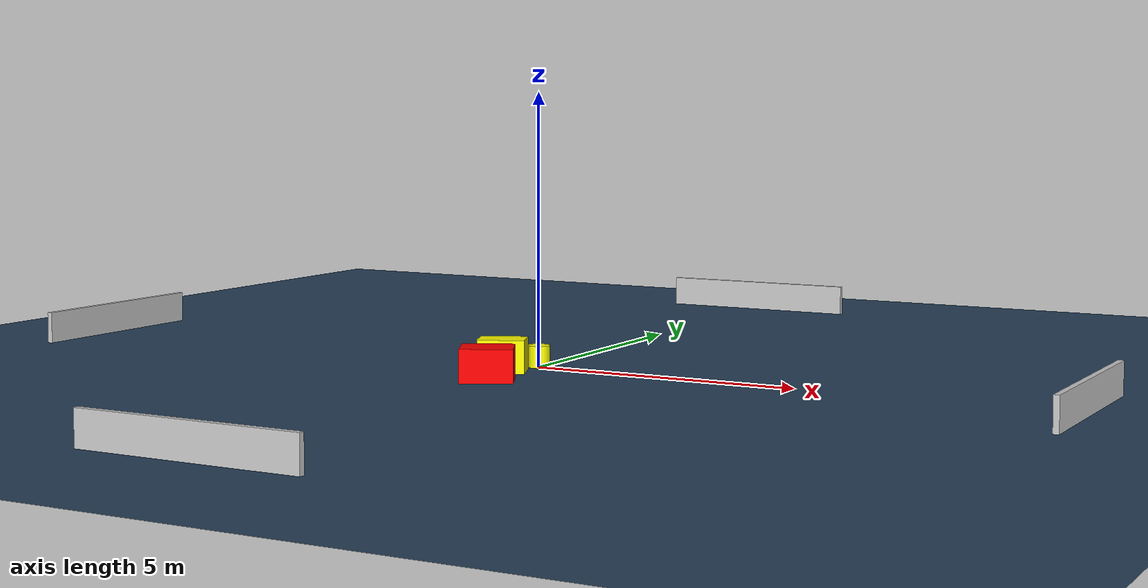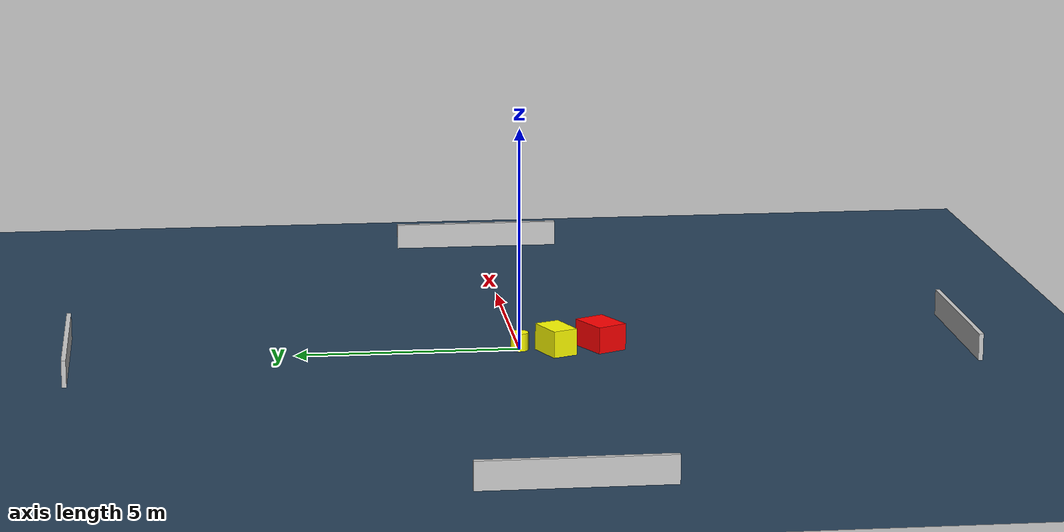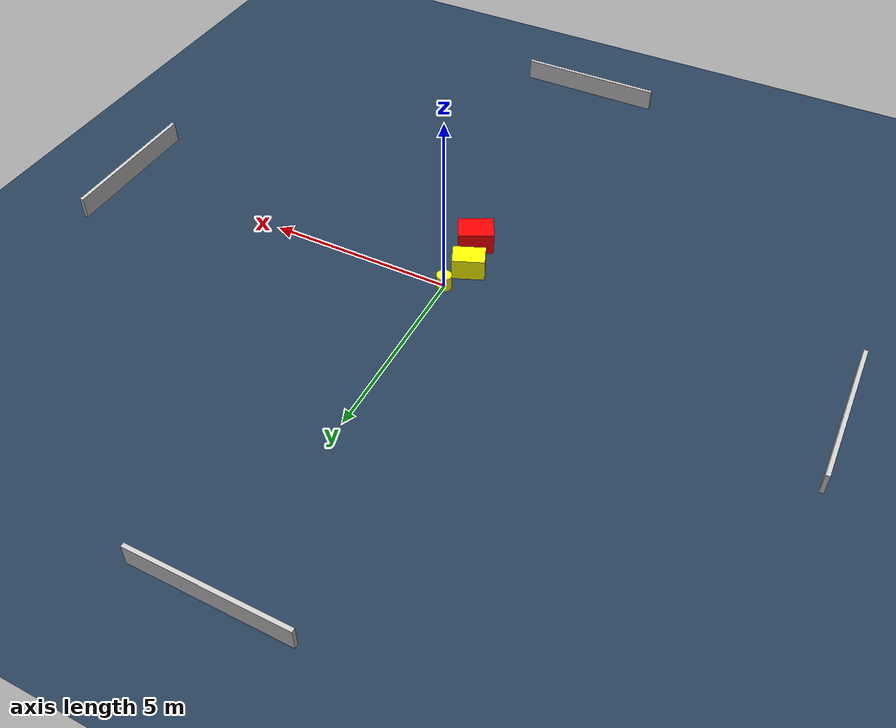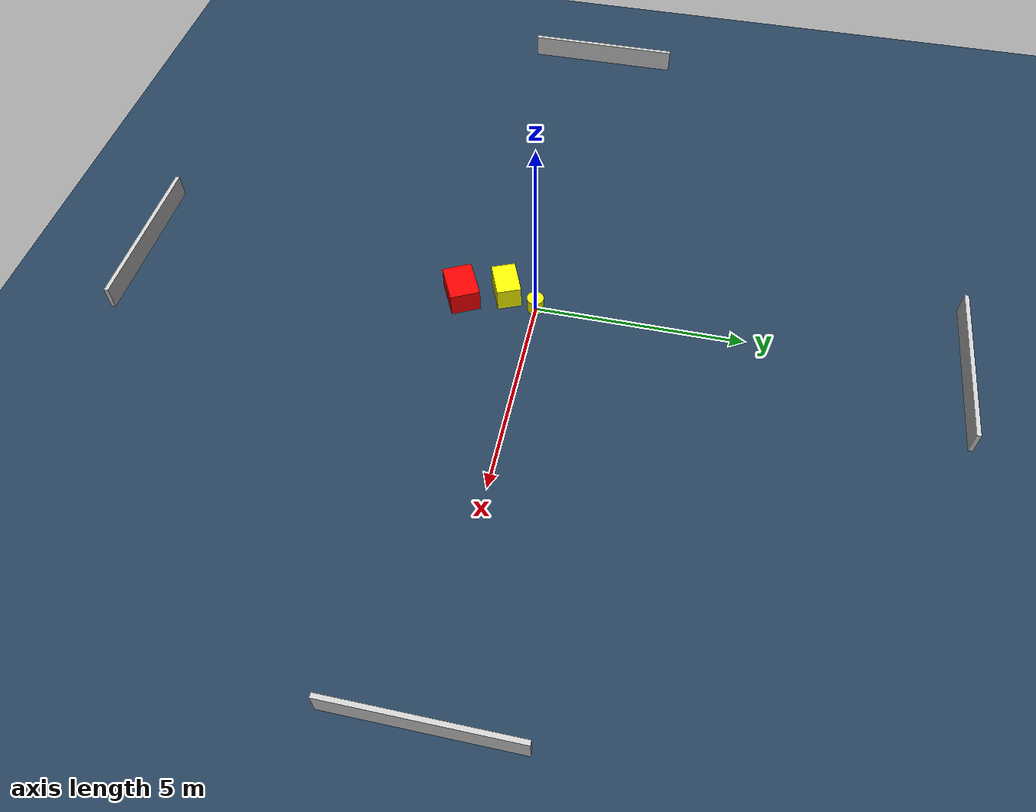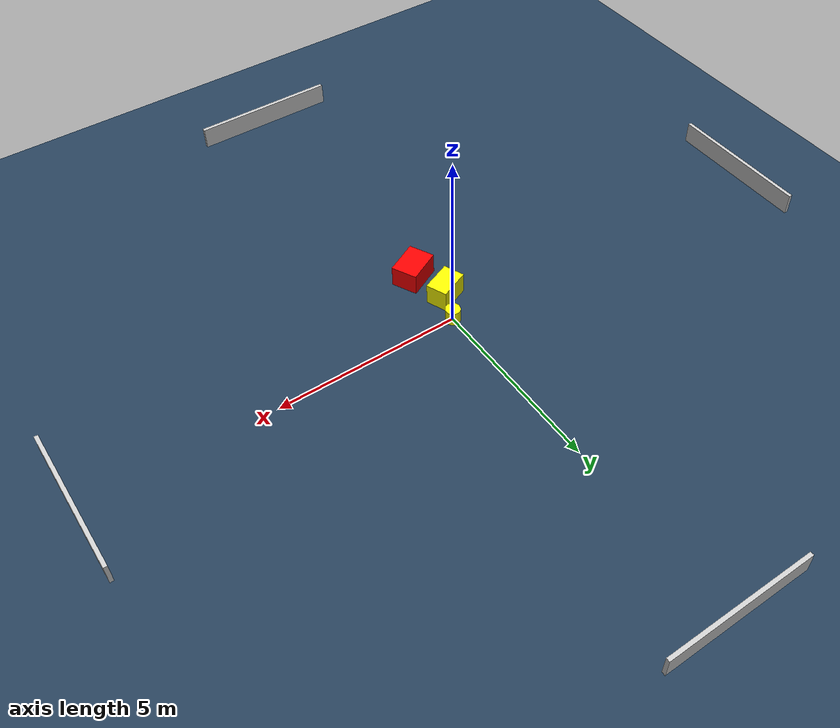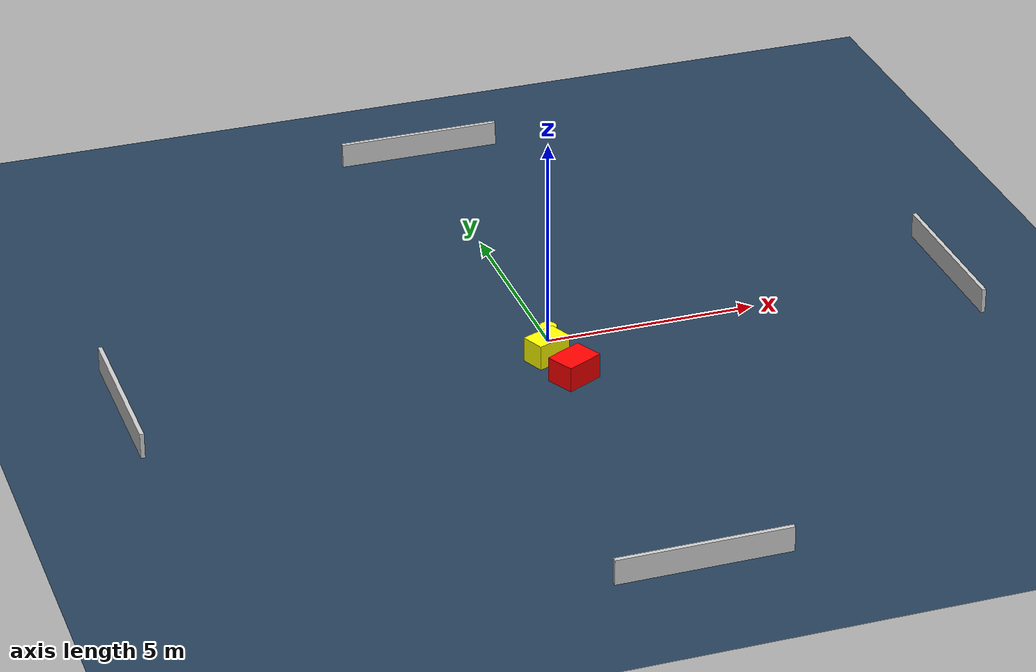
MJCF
<?xml version="1.0" ?>
<mujoco model="generated_environment">
  <option timestep="0.01" integrator="RK4" cone="elliptic"/>
  <default>
    <geom density="1"/>
  </default>
  <asset>
    <texture builtin="gradient" height="3072" name="skybox" rgb1="0.3 0.5 0.7" rgb2="0 0 0" type="skybox" width="512"/>
    <texture builtin="checker" height="300" name="groundplane" rgb1="0.2 0.3 0.4" rgb2="0.1 0.2 0.3" type="2d" width="300"/>
    <material name="groundplane" reflectance="0.2" texrepeat="5 5" texture="groundplane"/>
  </asset>
  <worldbody>
    <light dir="0 0 -1" directional="true" pos="0 0 1.5"/>
    <geom condim="3" friction="0.5 0.005 0.001" material="groundplane" name="floor" pos="0 0 0" size="0 0 0.05" type="plane"/>
    <body name="walls">
      <geom name="wall_1" condim="4" pos="-10.0 0.0 0.3" rgba="0.800000011920929 0.800000011920929 0.800000011920929 1.0" size="0.05 2.0 0.3" type="box"/>
      <geom name="wall_2" condim="4" pos="10.0 0.0 0.3" rgba="0.800000011920929 0.800000011920929 0.800000011920929 1.0" size="0.05 2.0 0.3" type="box"/>
      <geom name="wall_3" condim="4" pos="0.0 -10.0 0.3" rgba="0.800000011920929 0.800000011920929 0.800000011920929 1.0" size="2.0 0.05 0.3" type="box"/>
      <geom name="wall_4" condim="4" pos="0.0 10.0 0.3" rgba="0.800000011920929 0.800000011920929 0.800000011920929 1.0" size="2.0 0.05 0.3" type="box"/>
    </body>
    <body name="robot">
      <joint name="joint_x" type="slide" pos="0 0 0" axis="1 0 0"/>
      <joint name="joint_y" type="slide" pos="0 0 0" axis="0 1 0"/>
      <geom name="robot" type="cylinder" pos="0.0 0.0 0.2" size="0.2 0.2 0.0" mass="5.0" friction="1.0 0.005 0.0001" condim="4" rgba="1.0 1.0 0.0 1.0"/>
    </body>
    <body name="obstacle_1_movable">
      <geom name="obstacle_1_movable" condim="4" pos="-0.30745870460797775 -0.7825229874811679 0.3" euler="0 0 22.636856439410764" friction="0.0 0.005 0.001" rgba="1.0 1.0 0.0 1.0" size="0.4259582258012431 0.2896626171585954 0.3" type="box" mass="0.1"/>
      <joint type="free"/>
    </body>
    <body name="obstacle_2_static">
      <geom name="obstacle_2_static" condim="4" pos="-0.004556219965838769 -1.8224632226845958 0.3" euler="0 0 206.5980358322773" friction="0.0 0.005 0.001" rgba="1.0 0.0 0.0 1.0" size="0.47035884422929525 0.35544048597123695 0.3" type="box"/>
    </body>
  </worldbody>
  <actuator>
    <motor name="actuator_x" joint="joint_x" gear="1" ctrlrange="-1 1"/>
    <motor name="actuator_y" joint="joint_y" gear="1" ctrlrange="-1 1"/>
  </actuator>
</mujoco>
